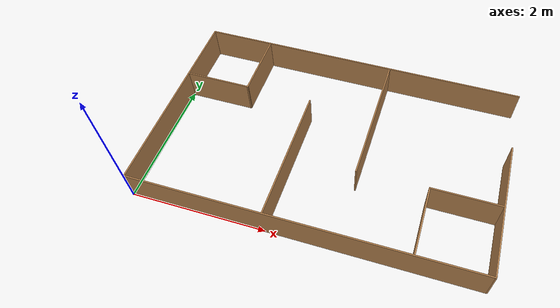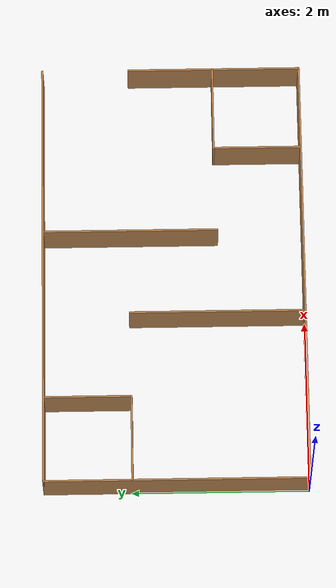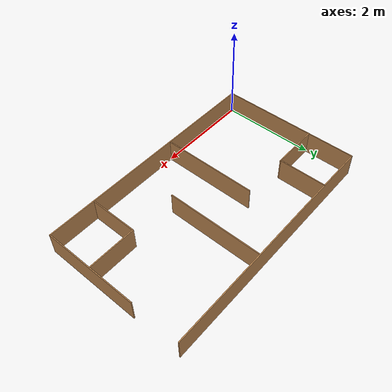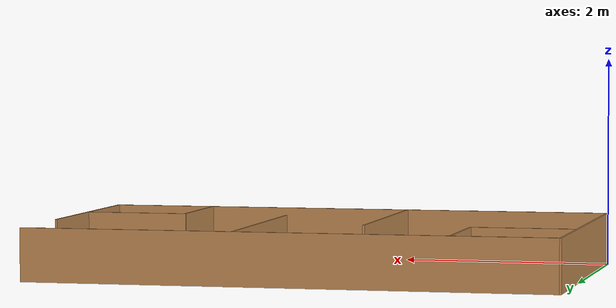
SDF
<?xml version='1.0'?>
<sdf version='1.6'>
  <model name='exp_03'>
    <pose frame=''>2.50081 1.49307 0 0 -0 0</pose>
    <link name='Wall_18'>
      <collision name='Wall_18_Collision'>
        <geometry>
          <box>
            <size>5 0.02 0.5</size>
          </box>
        </geometry>
        <pose frame=''>0 0 0.25 0 -0 0</pose>
      </collision>
      <visual name='Wall_18_Visual'>
        <pose frame=''>0 0 0.25 0 -0 0</pose>
        <geometry>
          <box>
            <size>5 0.02 0.5</size>
          </box>
        </geometry>
        <material>
          <script>
            <uri>file://media/materials/scripts/gazebo.material</uri>
            <name>Gazebo/Wood</name>
          </script>
          <ambient>1 1 1 1</ambient>
        </material>
        <meta>
          <layer>0</layer>
        </meta>
      </visual>
      <pose frame=''>-0 -1.49 0 0 -0 -2.8e-05</pose>
    </link>
    <link name='Wall_20'>
      <collision name='Wall_20_Collision'>
        <geometry>
          <box>
            <size>3 0.02 0.5</size>
          </box>
        </geometry>
        <pose frame=''>0 0 0.25 0 -0 0</pose>
      </collision>
      <visual name='Wall_20_Visual'>
        <pose frame=''>0 0 0.25 0 -0 0</pose>
        <geometry>
          <box>
            <size>3 0.02 0.5</size>
          </box>
        </geometry>
        <material>
          <script>
            <uri>file://media/materials/scripts/gazebo.material</uri>
            <name>Gazebo/Wood</name>
          </script>
          <ambient>1 1 1 1</ambient>
        </material>
        <meta>
          <layer>0</layer>
        </meta>
      </visual>
      <pose frame=''>-2.49019 7.1e-05 0 0 -0 1.5708</pose>
    </link>
    <link name='Wall_22'>
      <collision name='Wall_22_Collision'>
        <geometry>
          <box>
            <size>5 0.02 0.5</size>
          </box>
        </geometry>
        <pose frame=''>0 0 0.25 0 -0 0</pose>
      </collision>
      <visual name='Wall_22_Visual'>
        <pose frame=''>0 0 0.25 0 -0 0</pose>
        <geometry>
          <box>
            <size>5 0.02 0.5</size>
          </box>
        </geometry>
        <material>
          <script>
            <uri>file://media/materials/scripts/gazebo.material</uri>
            <name>Gazebo/Wood</name>
          </script>
          <ambient>1 1 1 1</ambient>
        </material>
        <meta>
          <layer>0</layer>
        </meta>
      </visual>
      <pose frame=''>-0.000194 1.49007 0 0 -0 0</pose>
    </link>
    <link name='Wall_24'>
      <collision name='Wall_24_Collision'>
        <geometry>
          <box>
            <size>2 0.02 0.5</size>
          </box>
        </geometry>
        <pose frame=''>0 0 0.25 0 -0 0</pose>
      </collision>
      <visual name='Wall_24_Visual'>
        <pose frame=''>0 0 0.25 0 -0 0</pose>
        <geometry>
          <box>
            <size>2 0.02 0.5</size>
          </box>
        </geometry>
        <material>
          <script>
            <uri>file://media/materials/scripts/gazebo.material</uri>
            <name>Gazebo/Wood</name>
          </script>
          <ambient>1 1 1 1</ambient>
        </material>
        <meta>
          <layer>0</layer>
        </meta>
      </visual>
      <pose frame=''>2.49019 -0.500071 0 0 -0 1.5708</pose>
    </link>
    <link name='Wall_26'>
      <collision name='Wall_26_Collision'>
        <geometry>
          <box>
            <size>1 0.02 0.5</size>
          </box>
        </geometry>
        <pose frame=''>0 0 0.25 0 -0 0</pose>
      </collision>
      <visual name='Wall_26_Visual'>
        <pose frame=''>0 0 0.25 0 -0 0</pose>
        <geometry>
          <box>
            <size>1 0.02 0.5</size>
          </box>
        </geometry>
        <material>
          <script>
            <uri>file://media/materials/scripts/gazebo.material</uri>
            <name>Gazebo/Wood</name>
          </script>
          <ambient>1 1 1 1</ambient>
        </material>
        <meta>
          <layer>0</layer>
        </meta>
      </visual>
      <pose frame=''>-1.50296 0.986674 0 0 -0 -1.5708</pose>
    </link>
    <link name='Wall_28'>
      <collision name='Wall_28_Collision'>
        <geometry>
          <box>
            <size>1 0.02 0.5</size>
          </box>
        </geometry>
        <pose frame=''>0 0 0.25 0 -0 0</pose>
      </collision>
      <visual name='Wall_28_Visual'>
        <pose frame=''>0 0 0.25 0 -0 0</pose>
        <geometry>
          <box>
            <size>1 0.02 0.5</size>
          </box>
        </geometry>
        <material>
          <script>
            <uri>file://media/materials/scripts/gazebo.material</uri>
            <name>Gazebo/Wood</name>
          </script>
          <ambient>1 1 1 1</ambient>
        </material>
        <meta>
          <layer>0</layer>
        </meta>
      </visual>
      <pose frame=''>-1.99228 0.497134 0 0 -0 3.14159</pose>
    </link>
    <link name='Wall_30'>
      <collision name='Wall_30_Collision'>
        <geometry>
          <box>
            <size>2 0.02 0.5</size>
          </box>
        </geometry>
        <pose frame=''>0 0 0.25 0 -0 0</pose>
      </collision>
      <visual name='Wall_30_Visual'>
        <pose frame=''>0 0 0.25 0 -0 0</pose>
        <geometry>
          <box>
            <size>2 0.02 0.5</size>
          </box>
        </geometry>
        <material>
          <script>
            <uri>file://media/materials/scripts/gazebo.material</uri>
            <name>Gazebo/Wood</name>
          </script>
          <ambient>1 1 1 1</ambient>
        </material>
        <meta>
          <layer>0</layer>
        </meta>
      </visual>
      <pose frame=''>-0.50256 -0.485708 0 0 -0 -1.5708</pose>
    </link>
    <link name='Wall_32'>
      <collision name='Wall_32_Collision'>
        <geometry>
          <box>
            <size>2 0.02 0.5</size>
          </box>
        </geometry>
        <pose frame=''>0 0 0.25 0 -0 0</pose>
      </collision>
      <visual name='Wall_32_Visual'>
        <pose frame=''>0 0 0.25 0 -0 0</pose>
        <geometry>
          <box>
            <size>2 0.02 0.5</size>
          </box>
        </geometry>
        <material>
          <script>
            <uri>file://media/materials/scripts/gazebo.material</uri>
            <name>Gazebo/Wood</name>
          </script>
          <ambient>1 1 1 1</ambient>
        </material>
        <meta>
          <layer>0</layer>
        </meta>
      </visual>
      <pose frame=''>0.49232 0.482089 0 0 -0 -1.5708</pose>
    </link>
    <link name='Wall_34'>
      <collision name='Wall_34_Collision'>
        <geometry>
          <box>
            <size>1 0.02 0.5</size>
          </box>
        </geometry>
        <pose frame=''>0 0 0.25 0 -0 0</pose>
      </collision>
      <visual name='Wall_34_Visual'>
        <pose frame=''>0 0 0.25 0 -0 0</pose>
        <geometry>
          <box>
            <size>1 0.02 0.5</size>
          </box>
        </geometry>
        <material>
          <script>
            <uri>file://media/materials/scripts/gazebo.material</uri>
            <name>Gazebo/Wood</name>
          </script>
          <ambient>1 1 1 1</ambient>
        </material>
        <meta>
          <layer>0</layer>
        </meta>
      </visual>
      <pose frame=''>1.99177 -0.484331 0 0 -0 3.14159</pose>
    </link>
    <link name='Wall_36'>
      <collision name='Wall_36_Collision'>
        <geometry>
          <box>
            <size>1 0.02 0.5</size>
          </box>
        </geometry>
        <pose frame=''>0 0 0.25 0 -0 0</pose>
      </collision>
      <visual name='Wall_36_Visual'>
        <pose frame=''>0 0 0.25 0 -0 0</pose>
        <geometry>
          <box>
            <size>1 0.02 0.5</size>
          </box>
        </geometry>
        <material>
          <script>
            <uri>file://media/materials/scripts/gazebo.material</uri>
            <name>Gazebo/Wood</name>
          </script>
          <ambient>1 1 1 1</ambient>
        </material>
        <meta>
          <layer>0</layer>
        </meta>
      </visual>
      <pose frame=''>1.50181 -0.988161 0 0 -0 -1.5708</pose>
    </link>
    <static>1</static>
  </model>
</sdf>
